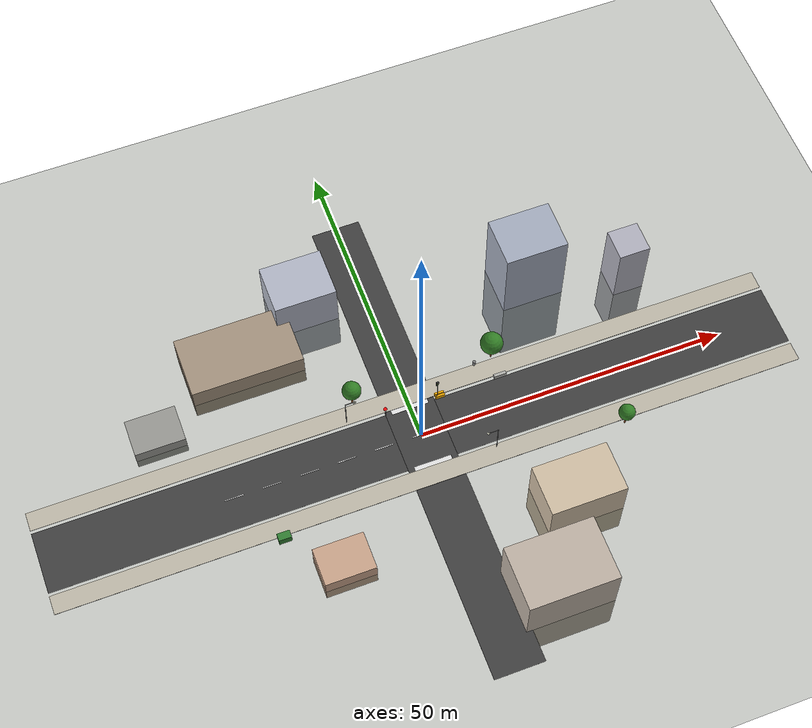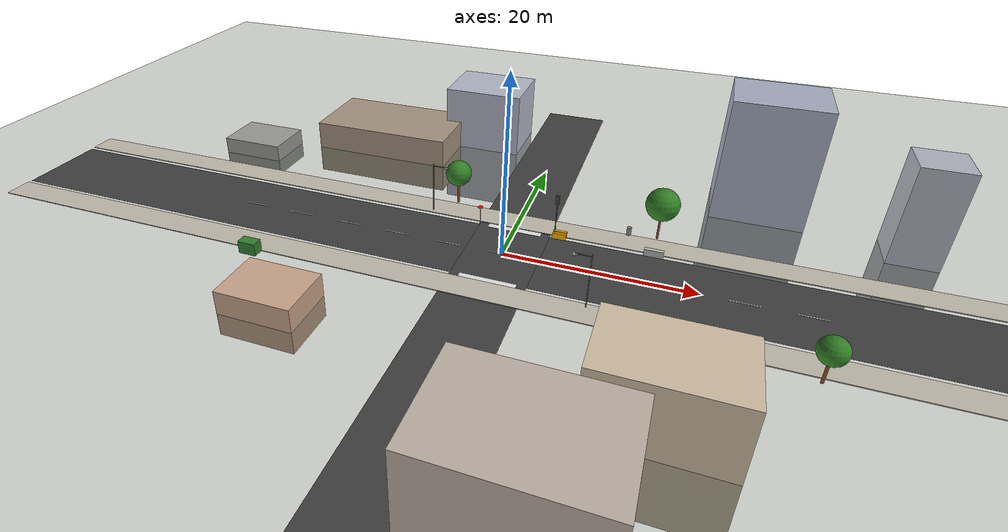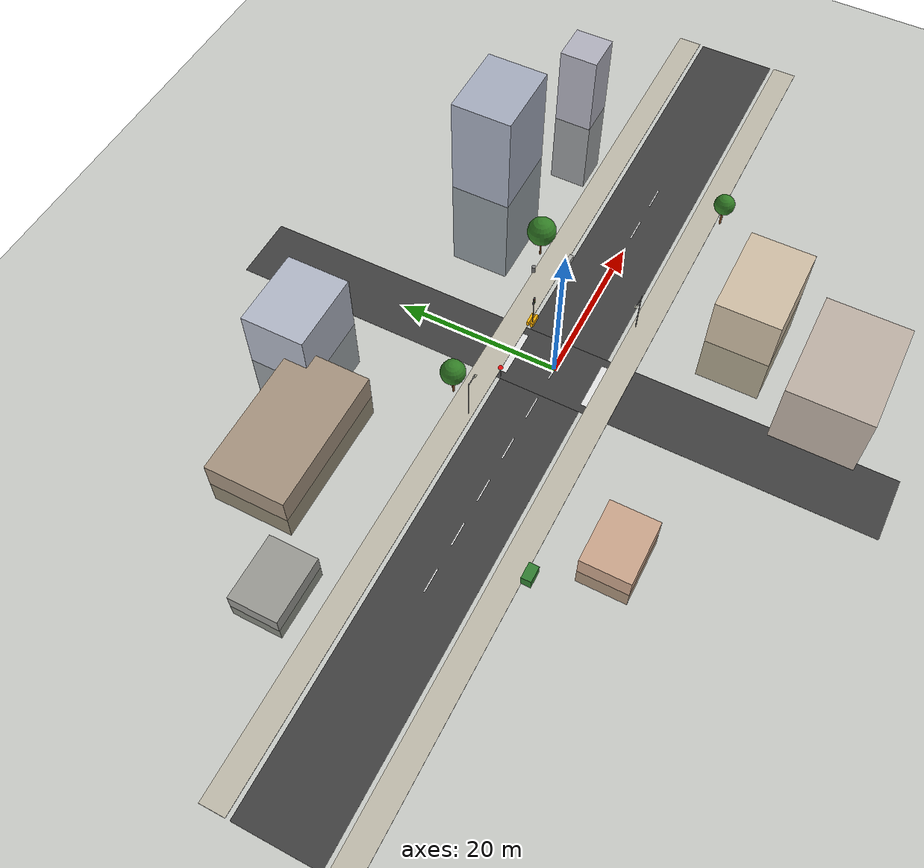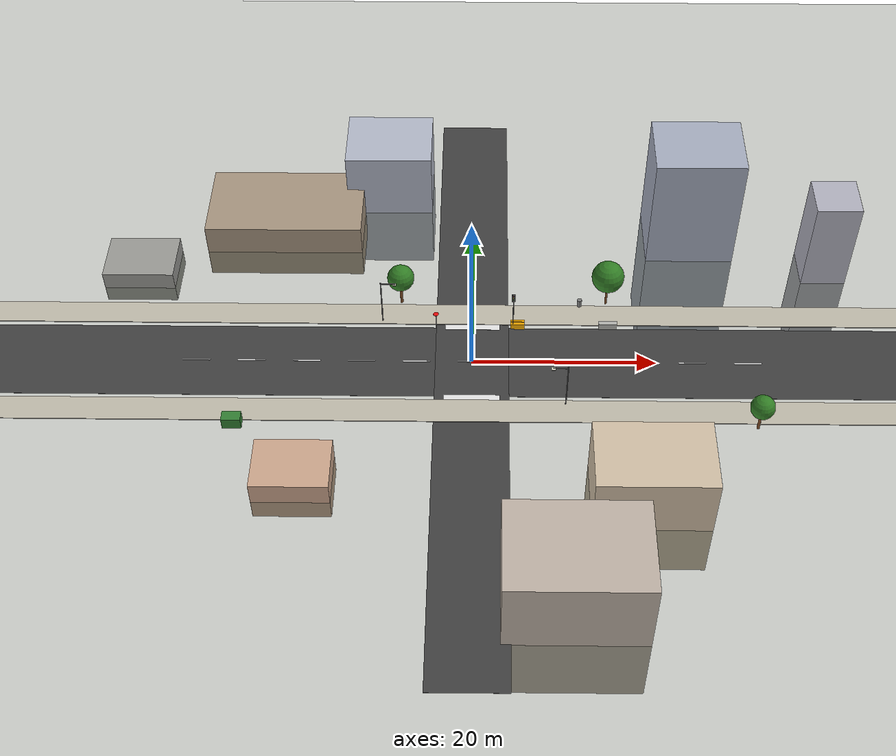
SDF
<sdf version="1.9">
 <world name="sentinel_street">
  <physics type="ode">
   <max_step_size>0.004</max_step_size>
   <real_time_factor>1.0</real_time_factor>
   <real_time_update_rate>250</real_time_update_rate>
  </physics>
  <gravity>0 0 -9.8</gravity>
  <magnetic_field>6e-06 2.3e-05 -4.2e-05</magnetic_field>
  <atmosphere type="adiabatic"/>
  <scene>
   <grid>false</grid>
   <ambient>0.45 0.45 0.45 1</ambient>
   <background>0.55 0.65 0.85 1</background>
   <shadows>true</shadows>
  </scene>
  <model name="ground_plane">
   <static>true</static>
   <link name="link">
    <collision name="collision">
     <geometry><plane><normal>0 0 1</normal><size>1 1</size></plane></geometry>
     <surface><friction><ode><mu>100</mu><mu2>50</mu2></ode></friction></surface>
    </collision>
    <visual name="visual">
     <geometry><plane><normal>0 0 1</normal><size>500 500</size></plane></geometry>
     <material>
      <ambient>0.25 0.28 0.22 1</ambient>
      <diffuse>0.3 0.33 0.27 1</diffuse>
      <specular>0.1 0.1 0.1 1</specular>
     </material>
    </visual>
    <inertial>
     <mass>1</mass>
     <inertia><ixx>1</ixx><ixy>0</ixy><ixz>0</ixz><iyy>1</iyy><iyz>0</iyz><izz>1</izz></inertia>
    </inertial>
   </link>
  </model>
  <model name="road_main">
   <static>true</static>
   <pose>0 0 0.005 0 0 0</pose>
   <link name="link">
    <visual name="visual">
     <geometry><box><size>120 10 0.01</size></box></geometry>
     <material>
      <ambient>0.2 0.2 0.2 1</ambient>
      <diffuse>0.25 0.25 0.25 1</diffuse>
      <specular>0.05 0.05 0.05 1</specular>
     </material>
    </visual>
   </link>
  </model>
  <model name="road_cross">
   <static>true</static>
   <pose>0 0 0.006 0 0 0</pose>
   <link name="link">
    <visual name="visual">
     <geometry><box><size>8 80 0.01</size></box></geometry>
     <material>
      <ambient>0.2 0.2 0.2 1</ambient>
      <diffuse>0.25 0.25 0.25 1</diffuse>
      <specular>0.05 0.05 0.05 1</specular>
     </material>
    </visual>
   </link>
  </model>
  <model name="sidewalk_north">
   <static>true</static>
   <pose>0 7 0.05 0 0 0</pose>
   <link name="link">
    <collision name="collision"><geometry><box><size>120 3 0.1</size></box></geometry></collision>
    <visual name="visual">
     <geometry><box><size>120 3 0.1</size></box></geometry>
     <material><ambient>0.7 0.68 0.62 1</ambient><diffuse>0.75 0.73 0.67 1</diffuse></material>
    </visual>
   </link>
  </model>
  <model name="sidewalk_south">
   <static>true</static>
   <pose>0 -7 0.05 0 0 0</pose>
   <link name="link">
    <collision name="collision"><geometry><box><size>120 3 0.1</size></box></geometry></collision>
    <visual name="visual">
     <geometry><box><size>120 3 0.1</size></box></geometry>
     <material><ambient>0.7 0.68 0.62 1</ambient><diffuse>0.75 0.73 0.67 1</diffuse></material>
    </visual>
   </link>
  </model>
  <model name="lane_mark_1">
   <static>true</static>
   <pose>-30 0 0.01 0 0 0</pose>
   <link name="link">
    <visual name="visual">
     <geometry><box><size>3 0.15 0.01</size></box></geometry>
     <material><ambient>0.9 0.9 0.9 1</ambient><diffuse>0.95 0.95 0.95 1</diffuse></material>
    </visual>
   </link>
  </model>
  <model name="lane_mark_2">
   <static>true</static>
   <pose>-24 0 0.01 0 0 0</pose>
   <link name="link">
    <visual name="visual">
     <geometry><box><size>3 0.15 0.01</size></box></geometry>
     <material><ambient>0.9 0.9 0.9 1</ambient><diffuse>0.95 0.95 0.95 1</diffuse></material>
    </visual>
   </link>
  </model>
  <model name="lane_mark_3">
   <static>true</static>
   <pose>-18 0 0.01 0 0 0</pose>
   <link name="link">
    <visual name="visual">
     <geometry><box><size>3 0.15 0.01</size></box></geometry>
     <material><ambient>0.9 0.9 0.9 1</ambient><diffuse>0.95 0.95 0.95 1</diffuse></material>
    </visual>
   </link>
  </model>
  <model name="lane_mark_4">
   <static>true</static>
   <pose>-12 0 0.01 0 0 0</pose>
   <link name="link">
    <visual name="visual">
     <geometry><box><size>3 0.15 0.01</size></box></geometry>
     <material><ambient>0.9 0.9 0.9 1</ambient><diffuse>0.95 0.95 0.95 1</diffuse></material>
    </visual>
   </link>
  </model>
  <model name="lane_mark_5">
   <static>true</static>
   <pose>-6 0 0.01 0 0 0</pose>
   <link name="link">
    <visual name="visual">
     <geometry><box><size>3 0.15 0.01</size></box></geometry>
     <material><ambient>0.9 0.9 0.9 1</ambient><diffuse>0.95 0.95 0.95 1</diffuse></material>
    </visual>
   </link>
  </model>
  <model name="lane_mark_6">
   <static>true</static>
   <pose>0 0 0.01 0 0 0</pose>
   <link name="link">
    <visual name="visual">
     <geometry><box><size>3 0.15 0.01</size></box></geometry>
     <material><ambient>0.9 0.9 0.9 1</ambient><diffuse>0.95 0.95 0.95 1</diffuse></material>
    </visual>
   </link>
  </model>
  <model name="lane_mark_7">
   <static>true</static>
   <pose>6 0 0.01 0 0 0</pose>
   <link name="link">
    <visual name="visual">
     <geometry><box><size>3 0.15 0.01</size></box></geometry>
     <material><ambient>0.9 0.9 0.9 1</ambient><diffuse>0.95 0.95 0.95 1</diffuse></material>
    </visual>
   </link>
  </model>
  <model name="lane_mark_8">
   <static>true</static>
   <pose>12 0 0.01 0 0 0</pose>
   <link name="link">
    <visual name="visual">
     <geometry><box><size>3 0.15 0.01</size></box></geometry>
     <material><ambient>0.9 0.9 0.9 1</ambient><diffuse>0.95 0.95 0.95 1</diffuse></material>
    </visual>
   </link>
  </model>
  <model name="lane_mark_9">
   <static>true</static>
   <pose>18 0 0.01 0 0 0</pose>
   <link name="link">
    <visual name="visual">
     <geometry><box><size>3 0.15 0.01</size></box></geometry>
     <material><ambient>0.9 0.9 0.9 1</ambient><diffuse>0.95 0.95 0.95 1</diffuse></material>
    </visual>
   </link>
  </model>
  <model name="lane_mark_10">
   <static>true</static>
   <pose>24 0 0.01 0 0 0</pose>
   <link name="link">
    <visual name="visual">
     <geometry><box><size>3 0.15 0.01</size></box></geometry>
     <material><ambient>0.9 0.9 0.9 1</ambient><diffuse>0.95 0.95 0.95 1</diffuse></material>
    </visual>
   </link>
  </model>
  <model name="lane_mark_11">
   <static>true</static>
   <pose>30 0 0.01 0 0 0</pose>
   <link name="link">
    <visual name="visual">
     <geometry><box><size>3 0.15 0.01</size></box></geometry>
     <material><ambient>0.9 0.9 0.9 1</ambient><diffuse>0.95 0.95 0.95 1</diffuse></material>
    </visual>
   </link>
  </model>
  <model name="crosswalk_n">
   <static>true</static>
   <pose>0 5.5 0.01 0 0 0</pose>
   <link name="link">
    <visual name="visual">
     <geometry><box><size>6 1.5 0.01</size></box></geometry>
     <material><ambient>0.85 0.85 0.85 1</ambient><diffuse>0.9 0.9 0.9 1</diffuse></material>
    </visual>
   </link>
  </model>
  <model name="crosswalk_s">
   <static>true</static>
   <pose>0 -5.5 0.01 0 0 0</pose>
   <link name="link">
    <visual name="visual">
     <geometry><box><size>6 1.5 0.01</size></box></geometry>
     <material><ambient>0.85 0.85 0.85 1</ambient><diffuse>0.9 0.9 0.9 1</diffuse></material>
    </visual>
   </link>
  </model>
  <model name="building_office">
   <static>true</static>
   <pose>25 20 0 0 0 0</pose>
   <link name="link">
    <collision name="collision"><geometry><box><size>10 8 28</size></box></geometry></collision>
    <visual name="visual">
     <geometry><box><size>10 8 28</size></box></geometry>
     <material>
      <ambient>0.55 0.58 0.65 1</ambient>
      <diffuse>0.65 0.68 0.75 1</diffuse>
      <specular>0.8 0.8 0.85 1</specular>
     </material>
    </visual>
   </link>
  </model>
  <model name="building_warehouse">
   <static>true</static>
   <pose>-22 22 0 0 0 0</pose>
   <link name="link">
    <collision name="collision"><geometry><box><size>18 10 7</size></box></geometry></collision>
    <visual name="visual">
     <geometry><box><size>18 10 7</size></box></geometry>
     <material>
      <ambient>0.55 0.48 0.4 1</ambient>
      <diffuse>0.65 0.58 0.5 1</diffuse>
      <specular>0.2 0.2 0.2 1</specular>
     </material>
    </visual>
   </link>
  </model>
  <model name="building_residential">
   <static>true</static>
   <pose>18 -18 0 0 0 0</pose>
   <link name="link">
    <collision name="collision"><geometry><box><size>12 8 14</size></box></geometry></collision>
    <visual name="visual">
     <geometry><box><size>12 8 14</size></box></geometry>
     <material>
      <ambient>0.72 0.65 0.55 1</ambient>
      <diffuse>0.82 0.75 0.65 1</diffuse>
      <specular>0.15 0.15 0.15 1</specular>
     </material>
    </visual>
   </link>
  </model>
  <model name="building_shop">
   <static>true</static>
   <pose>-18 -16 0 0 0 0</pose>
   <link name="link">
    <collision name="collision"><geometry><box><size>8 6 5</size></box></geometry></collision>
    <visual name="visual">
     <geometry><box><size>8 6 5</size></box></geometry>
     <material>
      <ambient>0.7 0.55 0.45 1</ambient>
      <diffuse>0.8 0.65 0.55 1</diffuse>
      <specular>0.3 0.3 0.3 1</specular>
     </material>
    </visual>
   </link>
  </model>
  <model name="building_tower">
   <static>true</static>
   <pose>40 15 0 0 0 0</pose>
   <link name="link">
    <collision name="collision"><geometry><box><size>5 5 22</size></box></geometry></collision>
    <visual name="visual">
     <geometry><box><size>5 5 22</size></box></geometry>
     <material>
      <ambient>0.6 0.6 0.65 1</ambient>
      <diffuse>0.7 0.7 0.75 1</diffuse>
      <specular>0.7 0.7 0.75 1</specular>
     </material>
    </visual>
   </link>
  </model>
  <model name="building_garage">
   <static>true</static>
   <pose>-38 14 0 0 0 0</pose>
   <link name="link">
    <collision name="collision"><geometry><box><size>8 6 4</size></box></geometry></collision>
    <visual name="visual">
     <geometry><box><size>8 6 4</size></box></geometry>
     <material><ambient>0.5 0.5 0.48 1</ambient><diffuse>0.6 0.6 0.58 1</diffuse></material>
    </visual>
   </link>
  </model>
  <model name="building_apartment">
   <static>true</static>
   <pose>10 -30 0 0 0 0</pose>
   <link name="link">
    <collision name="collision"><geometry><box><size>14 10 18</size></box></geometry></collision>
    <visual name="visual">
     <geometry><box><size>14 10 18</size></box></geometry>
     <material>
      <ambient>0.65 0.6 0.55 1</ambient>
      <diffuse>0.75 0.7 0.65 1</diffuse>
      <specular>0.1 0.1 0.1 1</specular>
     </material>
    </visual>
   </link>
  </model>
  <model name="building_office2">
   <static>true</static>
   <pose>-10 28 0 0 0 0</pose>
   <link name="link">
    <collision name="collision"><geometry><box><size>10 8 16</size></box></geometry></collision>
    <visual name="visual">
     <geometry><box><size>10 8 16</size></box></geometry>
     <material>
      <ambient>0.6 0.62 0.68 1</ambient>
      <diffuse>0.7 0.72 0.78 1</diffuse>
      <specular>0.6 0.6 0.65 1</specular>
     </material>
    </visual>
   </link>
  </model>
  <model name="barrier_1">
   <static>true</static>
   <pose>5 5 0.4 0 0 0</pose>
   <link name="link">
    <collision name="collision"><geometry><box><size>1.5 0.3 0.7</size></box></geometry></collision>
    <visual name="visual">
     <geometry><box><size>1.5 0.3 0.7</size></box></geometry>
     <material><ambient>0.9 0.6 0.0 1</ambient><diffuse>1.0 0.7 0.0 1</diffuse></material>
    </visual>
   </link>
  </model>
  <model name="barrier_2">
   <static>true</static>
   <pose>5 5.5 0.4 0 0 0</pose>
   <link name="link">
    <visual name="visual">
     <geometry><box><size>1.5 0.3 0.7</size></box></geometry>
     <material><ambient>0.9 0.6 0.0 1</ambient><diffuse>1.0 0.7 0.0 1</diffuse></material>
    </visual>
   </link>
  </model>
  <model name="dumpster">
   <static>true</static>
   <pose>-25 -9 0.7 0 0 0</pose>
   <link name="link">
    <collision name="collision"><geometry><box><size>2.0 1.2 1.4</size></box></geometry></collision>
    <visual name="visual">
     <geometry><box><size>2.0 1.2 1.4</size></box></geometry>
     <material>
      <ambient>0.15 0.4 0.15 1</ambient>
      <diffuse>0.2 0.5 0.2 1</diffuse>
      <specular>0.3 0.3 0.3 1</specular>
     </material>
    </visual>
   </link>
  </model>
  <model name="jersey_barrier">
   <static>true</static>
   <pose>15 5.2 0.4 0 0 0</pose>
   <link name="link">
    <collision name="collision"><geometry><box><size>2.0 0.5 0.8</size></box></geometry></collision>
    <visual name="visual">
     <geometry><box><size>2.0 0.5 0.8</size></box></geometry>
     <material><ambient>0.6 0.6 0.58 1</ambient><diffuse>0.7 0.7 0.68 1</diffuse></material>
    </visual>
   </link>
  </model>
  <model name="trash_can">
   <static>true</static>
   <pose>12 8.5 0.5 0 0 0</pose>
   <link name="link">
    <visual name="visual">
     <geometry><cylinder><radius>0.25</radius><length>1.0</length></cylinder></geometry>
     <material><ambient>0.4 0.4 0.4 1</ambient><diffuse>0.5 0.5 0.5 1</diffuse></material>
    </visual>
   </link>
  </model>
  <model name="stop_sign">
   <static>true</static>
   <pose>-4 5 0 0 0 0</pose>
   <link name="link">
    <visual name="pole">
     <pose>0 0 1.0 0 0 0</pose>
     <geometry><cylinder><radius>0.04</radius><length>2.0</length></cylinder></geometry>
     <material><ambient>0.5 0.5 0.5 1</ambient><diffuse>0.6 0.6 0.6 1</diffuse></material>
    </visual>
    <visual name="sign">
     <pose>0 0 2.2 0 0 0</pose>
     <geometry><cylinder><radius>0.3</radius><length>0.02</length></cylinder></geometry>
     <material><ambient>0.8 0.0 0.0 1</ambient><diffuse>0.9 0.05 0.05 1</diffuse></material>
    </visual>
   </link>
  </model>
  <model name="traffic_light">
   <static>true</static>
   <pose>4.5 5 0 0 0 0</pose>
   <link name="link">
    <visual name="pole">
     <pose>0 0 2.5 0 0 0</pose>
     <geometry><cylinder><radius>0.05</radius><length>5.0</length></cylinder></geometry>
     <material><ambient>0.3 0.3 0.3 1</ambient><diffuse>0.4 0.4 0.4 1</diffuse></material>
    </visual>
    <visual name="housing">
     <pose>0 0 4.8 0 0 0</pose>
     <geometry><box><size>0.4 0.15 1.0</size></box></geometry>
     <material><ambient>0.2 0.2 0.2 1</ambient><diffuse>0.3 0.3 0.3 1</diffuse></material>
    </visual>
    <visual name="light_red">
     <pose>0 -0.08 5.1 0 0 0</pose>
     <geometry><sphere><radius>0.06</radius></sphere></geometry>
     <material>
      <ambient>1.0 0.1 0.1 1</ambient>
      <diffuse>1.0 0.2 0.2 1</diffuse>
      <emissive>0.8 0.0 0.0 1</emissive>
     </material>
    </visual>
    <visual name="light_yellow">
     <pose>0 -0.08 4.85 0 0 0</pose>
     <geometry><sphere><radius>0.06</radius></sphere></geometry>
     <material><ambient>0.8 0.8 0.1 1</ambient><diffuse>0.9 0.9 0.2 1</diffuse></material>
    </visual>
    <visual name="light_green">
     <pose>0 -0.08 4.6 0 0 0</pose>
     <geometry><sphere><radius>0.06</radius></sphere></geometry>
     <material><ambient>0.1 0.8 0.1 1</ambient><diffuse>0.2 0.9 0.2 1</diffuse></material>
    </visual>
   </link>
  </model>
  <model name="lamp_1">
   <static>true</static>
   <pose>-10 6 0 0 0 0</pose>
   <link name="link">
    <visual name="pole">
     <pose>0 0 3.0 0 0 0</pose>
     <geometry><cylinder><radius>0.06</radius><length>6.0</length></cylinder></geometry>
     <material><ambient>0.4 0.4 0.4 1</ambient><diffuse>0.5 0.5 0.5 1</diffuse></material>
    </visual>
    <visual name="arm">
     <pose>0.8 0 5.8 0 0 0</pose>
     <geometry><box><size>1.6 0.08 0.08</size></box></geometry>
     <material><ambient>0.4 0.4 0.4 1</ambient><diffuse>0.5 0.5 0.5 1</diffuse></material>
    </visual>
    <visual name="lamp_head">
     <pose>1.5 0 5.7 0 0 0</pose>
     <geometry><box><size>0.4 0.3 0.1</size></box></geometry>
     <material>
      <ambient>0.9 0.9 0.8 1</ambient>
      <diffuse>1.0 1.0 0.9 1</diffuse>
      <emissive>0.4 0.4 0.3 1</emissive>
     </material>
    </visual>
   </link>
  </model>
  <model name="lamp_2">
   <static>true</static>
   <pose>10 -6 0 0 0 0</pose>
   <link name="link">
    <visual name="pole">
     <pose>0 0 3.0 0 0 0</pose>
     <geometry><cylinder><radius>0.06</radius><length>6.0</length></cylinder></geometry>
     <material><ambient>0.4 0.4 0.4 1</ambient><diffuse>0.5 0.5 0.5 1</diffuse></material>
    </visual>
    <visual name="arm">
     <pose>-0.8 0 5.8 0 0 0</pose>
     <geometry><box><size>1.6 0.08 0.08</size></box></geometry>
     <material><ambient>0.4 0.4 0.4 1</ambient><diffuse>0.5 0.5 0.5 1</diffuse></material>
    </visual>
    <visual name="lamp_head">
     <pose>-1.5 0 5.7 0 0 0</pose>
     <geometry><box><size>0.4 0.3 0.1</size></box></geometry>
     <material>
      <ambient>0.9 0.9 0.8 1</ambient>
      <diffuse>1.0 1.0 0.9 1</diffuse>
      <emissive>0.4 0.4 0.3 1</emissive>
     </material>
    </visual>
   </link>
  </model>
  <model name="tree_1">
   <static>true</static>
   <pose>-8 9 0 0 0 0</pose>
   <link name="link">
    <visual name="trunk">
     <pose>0 0 1.5 0 0 0</pose>
     <geometry><cylinder><radius>0.15</radius><length>3.0</length></cylinder></geometry>
     <material><ambient>0.4 0.25 0.1 1</ambient><diffuse>0.5 0.3 0.15 1</diffuse></material>
    </visual>
    <visual name="canopy">
     <pose>0 0 3.8 0 0 0</pose>
     <geometry><sphere><radius>1.5</radius></sphere></geometry>
     <material><ambient>0.15 0.4 0.1 1</ambient><diffuse>0.2 0.5 0.15 1</diffuse></material>
    </visual>
   </link>
  </model>
  <model name="tree_2">
   <static>true</static>
   <pose>15 9 0 0 0 0</pose>
   <link name="link">
    <visual name="trunk">
     <pose>0 0 1.8 0 0 0</pose>
     <geometry><cylinder><radius>0.12</radius><length>3.6</length></cylinder></geometry>
     <material><ambient>0.4 0.25 0.1 1</ambient><diffuse>0.5 0.3 0.15 1</diffuse></material>
    </visual>
    <visual name="canopy">
     <pose>0 0 4.2 0 0 0</pose>
     <geometry><sphere><radius>1.8</radius></sphere></geometry>
     <material><ambient>0.15 0.4 0.1 1</ambient><diffuse>0.2 0.5 0.15 1</diffuse></material>
    </visual>
   </link>
  </model>
  <model name="tree_3">
   <static>true</static>
   <pose>30 -9 0 0 0 0</pose>
   <link name="link">
    <visual name="trunk">
     <pose>0 0 1.3 0 0 0</pose>
     <geometry><cylinder><radius>0.14</radius><length>2.6</length></cylinder></geometry>
     <material><ambient>0.4 0.25 0.1 1</ambient><diffuse>0.5 0.3 0.15 1</diffuse></material>
    </visual>
    <visual name="canopy">
     <pose>0 0 3.4 0 0 0</pose>
     <geometry><sphere><radius>1.3</radius></sphere></geometry>
     <material><ambient>0.15 0.4 0.1 1</ambient><diffuse>0.2 0.5 0.15 1</diffuse></material>
    </visual>
   </link>
  </model>
  <light name="sun" type="directional">
   <pose>0 0 500 0 0 0</pose>
   <intensity>1.2</intensity>
   <direction>0.3 0.5 -0.8</direction>
   <diffuse>0.95 0.92 0.85 1</diffuse>
   <specular>0.5 0.5 0.45 1</specular>
   <attenuation><range>2000</range><linear>0</linear><constant>1</constant><quadratic>0</quadratic></attenuation>
  </light>
  <light name="fill_light" type="directional">
   <pose>0 0 300 0 0 0</pose>
   <cast_shadows>false</cast_shadows>
   <intensity>0.4</intensity>
   <direction>-0.2 -0.3 -0.9</direction>
   <diffuse>0.8 0.85 0.9 1</diffuse>
   <specular>0.1 0.1 0.1 1</specular>
   <attenuation><range>2000</range><linear>0</linear><constant>1</constant><quadratic>0</quadratic></attenuation>
  </light>
  <spherical_coordinates>
   <surface_model>EARTH_WGS84</surface_model>
   <world_frame_orientation>ENU</world_frame_orientation>
   <latitude_deg>47.397971057728974</latitude_deg>
   <longitude_deg>8.546163739800146</longitude_deg>
   <elevation>0</elevation>
  </spherical_coordinates>
 </world>
</sdf>
